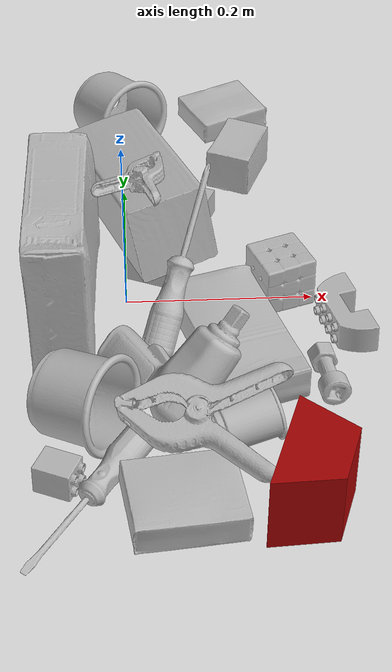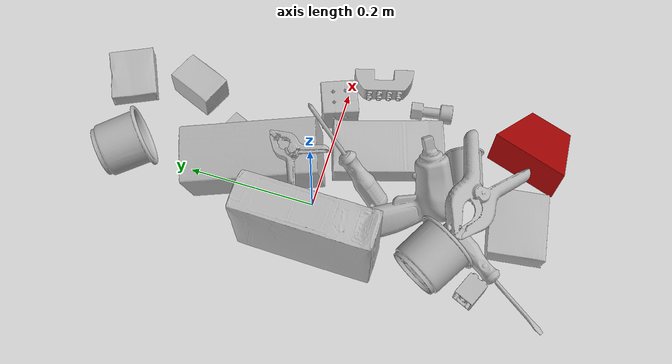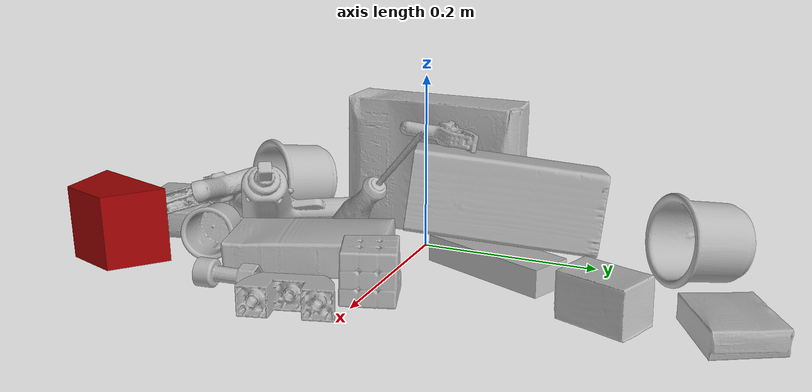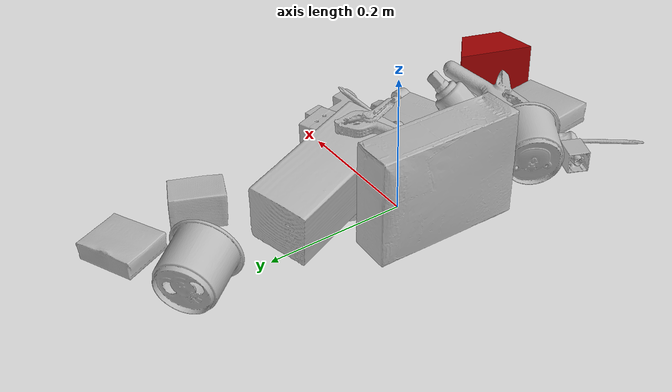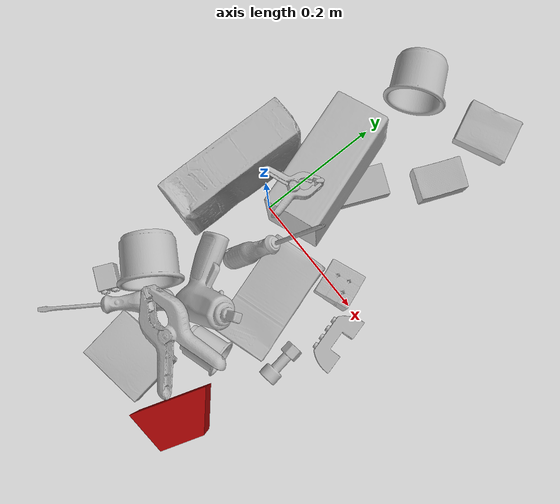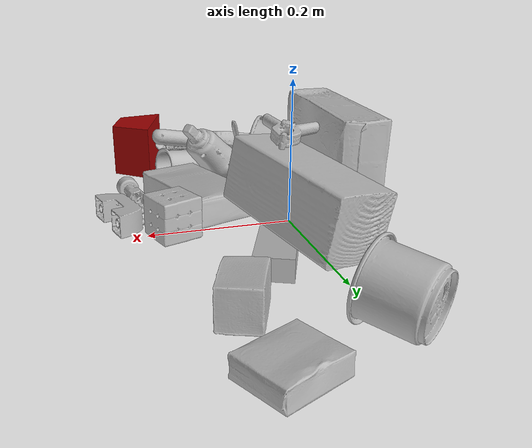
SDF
<sdf version="1.4">
  <world name="default">
    <light name="light1" type="point">
      <pose>0 0 1 0 0 0</pose>
      <diffuse>3 3 3 1</diffuse>
      <specular>3 3 3 1</specular>
    </light>
    <light name="light2" type="point">
      <pose>0 0.5 2 0 0 0</pose>
      <diffuse>1 1 1 1</diffuse>
      <specular>1 1 1 1</specular>
    </light>
    <light name="light3" type="point">
      <pose>0 0.5 2 0 0 0</pose>
      <diffuse>3 3 3 1</diffuse>
      <specular>3 3 3 1</specular>
    </light>
    <scene>
      <ambient>0.7 0.7 0.7</ambient>
    </scene>
    <model name="box21">
      <link name="link_box21">
        <collision name="default">
          <geometry>
            <mesh>
              <uri>model://cracker_box/collision_meshes/collision.obj</uri>
              <scale>1.0 1.0 1.0</scale>
            </mesh>
          </geometry>
          <surface>
            <friction>
              <ode>
                <mu>0.5</mu>
                <mu2>0.5</mu2>
              </ode>
            </friction>
          <contact>
        <ode>
            <max_vel>0</max_vel>
            <min_depth>0.0001</min_depth>
            <kp>1e8</kp>
        </ode>
    </contact></surface>
        </collision>
        <visual name="default">
          <geometry>
            <mesh>
              <uri>model://cracker_box/visual_meshes/visual.dae</uri>
              <scale>1.0 1.0 1.0</scale>
            </mesh>
          </geometry>
        </visual>
        <inertial>
          <mass>3.1344146728515625</mass>
          <pose>0.0009464123286306858 0.00025434247800149024 -0.0017029535956680775 -0.0003162077429326042 -0.011106488668875016 0.0025467950024750923</pose>
          <inertia>
            <ixx>0.0079725515</ixx>
            <iyy>0.01316425</iyy>
            <izz>0.01878659</izz>
            <ixy>0</ixy>
            <ixz>0</ixz>
            <iyz>0</iyz>
          </inertia>
        </inertial>
      </link>
      <pose>-0.06432986259460449 -0.012852434068918228 0.0817578062415123 1.545208140497402 0.009033896535475334 1.563410499556543</pose>
    </model>
    <model name="box22">
      <link name="link_box22">
        <collision name="default">
          <geometry>
            <mesh>
              <uri>model://jenga/collision_meshes/collision.obj</uri>
              <scale>1.0 1.0 1.0</scale>
            </mesh>
          </geometry>
          <surface>
            <friction>
              <ode>
                <mu>0.5</mu>
                <mu2>0.5</mu2>
              </ode>
            </friction>
          <contact>
        <ode>
            <max_vel>0</max_vel>
            <min_depth>0.0001</min_depth>
            <kp>1e8</kp>
        </ode>
    </contact></surface>
        </collision>
        <visual name="default">
          <geometry>
            <mesh>
              <uri>model://jenga/visual_meshes/visual.dae</uri>
              <scale>1.0 1.0 1.0</scale>
            </mesh>
          </geometry>
        </visual>
        <inertial>
          <mass>0.23869852721691132</mass>
          <pose>-2.502855807051674e-07 -0.0001025000965455547 -4.092339804628864e-05 0.0 -7.34215461761844e-07 0.0</pose>
          <inertia>
            <ixx>6.605367e-05</ixx>
            <iyy>0.00044757788</iyy>
            <izz>0.00047782745</izz>
            <ixy>0</ixy>
            <ixz>0</ixz>
            <iyz>0</iyz>
          </inertia>
        </inertial>
      </link>
      <pose>0.05153585597872734 0.10081835091114044 0.014983627945184708 0.0008830638384186344 5.344663272524352e-05 1.1627708389296887</pose>
    </model>
    <model name="box23">
      <link name="link_box23">
        <collision name="default">
          <geometry>
            <mesh>
              <uri>model://rubiks_cube/collision_meshes/collision.obj</uri>
              <scale>1.0 1.0 1.0</scale>
            </mesh>
          </geometry>
          <surface>
            <friction>
              <ode>
                <mu>0.5</mu>
                <mu2>0.5</mu2>
              </ode>
            </friction>
          <contact>
        <ode>
            <max_vel>0</max_vel>
            <min_depth>0.0001</min_depth>
            <kp>1e8</kp>
        </ode>
    </contact></surface>
        </collision>
        <visual name="default">
          <geometry>
            <mesh>
              <uri>model://rubiks_cube/visual_meshes/visual.dae</uri>
              <scale>1.0 1.0 1.0</scale>
            </mesh>
          </geometry>
        </visual>
        <inertial>
          <mass>0.26229962706565857</mass>
          <pose>2.6721041649580002e-05 5.2569666877388954e-05 -7.264316082000732e-06 -0.05467189873579491 -0.09814109048128683 -0.0344550730209751</pose>
          <inertia>
            <ixx>0.00014493814</ixx>
            <iyy>0.00014426222</iyy>
            <izz>0.00014613918</izz>
            <ixy>0</ixy>
            <ixz>0</ixz>
            <iyz>0</iyz>
          </inertia>
        </inertial>
      </link>
      <pose>0.1661963164806366 0.006492733955383301 0.028678975999355316 -2.8720073224593496e-06 -1.2348910744206396e-06 -2.7820376516282437</pose>
    </model>
    <model name="cup1">
      <link name="link_cup1">
        <collision name="default">
          <geometry>
            <mesh>
              <uri>model://j_cups/collision_meshes/collision.obj</uri>
              <scale>1.0 1.0 1.0</scale>
            </mesh>
          </geometry>
          <surface>
            <friction>
              <ode>
                <mu>0.5</mu>
                <mu2>0.5</mu2>
              </ode>
            </friction>
          <contact>
        <ode>
            <max_vel>0</max_vel>
            <min_depth>0.0001</min_depth>
            <kp>1e8</kp>
        </ode>
    </contact></surface>
        </collision>
        <visual name="default">
          <geometry>
            <mesh>
              <uri>model://j_cups/visual_meshes/visual.dae</uri>
              <scale>1.0 1.0 1.0</scale>
            </mesh>
          </geometry>
        </visual>
        <inertial>
          <mass>0.10388943552970886</mass>
          <pose>0.0006164857186377048 0.0005398984649218619 -0.0013479008339345455 0.03030360356214998 0.03758024855654077 0.43868424196936845</pose>
          <inertia>
            <ixx>0.00015254253</ixx>
            <iyy>0.0001541288</iyy>
            <izz>0.00017584988</izz>
            <ixy>0</ixy>
            <ixz>0</ixz>
            <iyz>0</iyz>
          </inertia>
        </inertial>
      </link>
      <pose>-0.044534217566251755 -0.19799554347991943 0.04714987426996231 1.4413221879429918 -0.17620143243121347 1.054224452641211</pose>
    </model>
    <model name="cup2">
      <link name="link_cup2">
        <collision name="default">
          <geometry>
            <mesh>
              <uri>model://i_cups/collision_meshes/collision.obj</uri>
              <scale>1.0 1.0 1.0</scale>
            </mesh>
          </geometry>
          <surface>
            <friction>
              <ode>
                <mu>0.5</mu>
                <mu2>0.5</mu2>
              </ode>
            </friction>
          <contact>
        <ode>
            <max_vel>0</max_vel>
            <min_depth>0.0001</min_depth>
            <kp>1e8</kp>
        </ode>
    </contact></surface>
        </collision>
        <visual name="default">
          <geometry>
            <mesh>
              <uri>model://i_cups/visual_meshes/visual.dae</uri>
              <scale>1.0 1.0 1.0</scale>
            </mesh>
          </geometry>
        </visual>
        <inertial>
          <mass>0.057485051453113556</mass>
          <pose>0.00011239853483857587 0.00016797262651380152 -0.000857901235576719 -0.028982969026390082 -0.03987335468246028 -0.34591562504163004</pose>
          <inertia>
            <ixx>7.958892e-05</ixx>
            <iyy>8.029015e-05</iyy>
            <izz>8.8953486e-05</izz>
            <ixy>0</ixy>
            <ixz>0</ixz>
            <iyz>0</iyz>
          </inertia>
        </inertial>
      </link>
      <pose>-0.006038052495568991 0.3053504228591919 0.04487001895904541 1.4161372288454537 0.5738301340246601 0.5723755918449451</pose>
    </model>
    <model name="box11">
      <link name="link_box11">
        <collision name="default">
          <geometry>
            <mesh>
              <uri>model://wood_block/collision_meshes/collision.obj</uri>
              <scale>1.0 1.0 1.0</scale>
            </mesh>
          </geometry>
          <surface>
            <friction>
              <ode>
                <mu>0.5</mu>
                <mu2>0.5</mu2>
              </ode>
            </friction>
          <contact>
        <ode>
            <max_vel>0</max_vel>
            <min_depth>0.0001</min_depth>
            <kp>1e8</kp>
        </ode>
    </contact></surface>
        </collision>
        <visual name="default">
          <geometry>
            <mesh>
              <uri>model://wood_block/visual_meshes/visual.dae</uri>
              <scale>1.0 1.0 1.0</scale>
            </mesh>
          </geometry>
        </visual>
        <inertial>
          <mass>2.2218124866485596</mass>
          <pose>-5.813315510749817e-06 -0.000570809468626976 0.0002640858292579651 -0.052211005792275555 -0.005192694700552194 -0.006861375481739596</pose>
          <inertia>
            <ixx>0.0029731211</ixx>
            <iyy>0.009392092</iyy>
            <izz>0.009356961</izz>
            <ixy>0</ixy>
            <ixz>0</ixz>
            <iyz>0</iyz>
          </inertia>
        </inertial>
      </link>
      <pose>0.018964797258377075 0.09886941313743591 0.07495682686567307 -0.13852171927347076 0.1286900829158782 1.8981474456048735</pose>
    </model>
    <model name="box12">
      <link name="link_box12">
        <collision name="default">
          <geometry>
            <mesh>
              <uri>model://sugar_box/collision_meshes/collision.obj</uri>
              <scale>1.0 1.0 1.0</scale>
            </mesh>
          </geometry>
          <surface>
            <friction>
              <ode>
                <mu>0.5</mu>
                <mu2>0.5</mu2>
              </ode>
            </friction>
          <contact>
        <ode>
            <max_vel>0</max_vel>
            <min_depth>0.0001</min_depth>
            <kp>1e8</kp>
        </ode>
    </contact></surface>
        </collision>
        <visual name="default">
          <geometry>
            <mesh>
              <uri>model://sugar_box/visual_meshes/visual.dae</uri>
              <scale>1.0 1.0 1.0</scale>
            </mesh>
          </geometry>
        </visual>
        <inertial>
          <mass>1.0162616968154907</mass>
          <pose>0.0010343727190047503 3.849109634757042e-05 -0.00036364805418998003 -0.0004046261550277283 0.0010506634055573133 0.0026153787890220875</pose>
          <inertia>
            <ixx>0.00084674655</ixx>
            <iyy>0.002736858</iyy>
            <izz>0.0032763465</izz>
            <ixy>0</ixy>
            <ixz>0</ixz>
            <iyz>0</iyz>
          </inertia>
        </inertial>
      </link>
      <pose>0.11454591900110245 -0.08915523439645767 0.02236250974237919 3.1412745495637924 -0.025109371871196558 1.8790578254864263</pose>
    </model>
    <model name="box13">
      <link name="link_box13">
        <collision name="default">
          <geometry>
            <mesh>
              <uri>model://pudding_box/collision_meshes/collision.obj</uri>
              <scale>1.0 1.0 1.0</scale>
            </mesh>
          </geometry>
          <surface>
            <friction>
              <ode>
                <mu>0.5</mu>
                <mu2>0.5</mu2>
              </ode>
            </friction>
          <contact>
        <ode>
            <max_vel>0</max_vel>
            <min_depth>0.0001</min_depth>
            <kp>1e8</kp>
        </ode>
    </contact></surface>
        </collision>
        <visual name="default">
          <geometry>
            <mesh>
              <uri>model://pudding_box/visual_meshes/visual.dae</uri>
              <scale>1.0 1.0 1.0</scale>
            </mesh>
          </geometry>
        </visual>
        <inertial>
          <mass>0.24922829866409302</mass>
          <pose>0.0004894822486676276 0.0008067885646596551 -0.0005188828217796981 0.005213100397381839 -0.006603797317439846 0.02007982889363753</pose>
          <inertia>
            <ixx>0.00028173975</ixx>
            <iyy>0.00018955652</iyy>
            <izz>0.0004160624</izz>
            <ixy>0</ixy>
            <ixz>0</ixz>
            <iyz>0</iyz>
          </inertia>
        </inertial>
      </link>
      <pose>0.05090631544589996 -0.311149001121521 0.019725807011127472 0.022347264311089073 -0.011392130067467223 1.7108405588999496</pose>
    </model>
    <model name="box14">
      <link name="link_box14">
        <collision name="default">
          <geometry>
            <mesh>
              <uri>model://gelatin_box/collision_meshes/collision.obj</uri>
              <scale>1.0 1.0 1.0</scale>
            </mesh>
          </geometry>
          <surface>
            <friction>
              <ode>
                <mu>0.5</mu>
                <mu2>0.5</mu2>
              </ode>
            </friction>
          <contact>
        <ode>
            <max_vel>0</max_vel>
            <min_depth>0.0001</min_depth>
            <kp>1e8</kp>
        </ode>
    </contact></surface>
        </collision>
        <visual name="default">
          <geometry>
            <mesh>
              <uri>model://gelatin_box/visual_meshes/visual.dae</uri>
              <scale>1.0 1.0 1.0</scale>
            </mesh>
          </geometry>
        </visual>
        <inertial>
          <mass>0.21856601536273956</mass>
          <pose>0.0004319618456065655 0.00011156871914863586 -0.00036403213744051754 -0.001050372093012012 -0.00475581868936722 0.016440559471878533</pose>
          <inertia>
            <ixx>0.00015428978</ixx>
            <iyy>0.000110208384</iyy>
            <izz>0.00023486343</izz>
            <ixy>0</ixy>
            <ixz>0</ixz>
            <iyz>0</iyz>
          </inertia>
        </inertial>
      </link>
      <pose>0.1241011768579483 0.3462228775024414 0.01516831386834383 0.0055974691038650805 -0.007304604039717003 2.0037450288396075</pose>
    </model>
    <model name="cup15">
      <link name="link_cup15">
        <collision name="default">
          <geometry>
            <mesh>
              <uri>model://b_cups/collision_meshes/collision.obj</uri>
              <scale>1.0 1.0 1.0</scale>
            </mesh>
          </geometry>
          <surface>
            <friction>
              <ode>
                <mu>0.5</mu>
                <mu2>0.5</mu2>
              </ode>
            </friction>
          <contact>
        <ode>
            <max_vel>0</max_vel>
            <min_depth>0.0001</min_depth>
            <kp>1e8</kp>
        </ode>
    </contact></surface>
        </collision>
        <visual name="default">
          <geometry>
            <mesh>
              <uri>model://b_cups/visual_meshes/visual.dae</uri>
              <scale>1.0 1.0 1.0</scale>
            </mesh>
          </geometry>
        </visual>
        <inertial>
          <mass>0.04691024869680405</mass>
          <pose>0.0005182002787478268 0.0018058588029816747 -0.0013381802709773183 0.1135631498080702 0.03872518969029637 -0.3456955043116969</pose>
          <inertia>
            <ixx>3.0706047e-05</ixx>
            <iyy>3.012308e-05</iyy>
            <izz>2.5838557e-05</izz>
            <ixy>0</ixy>
            <ixz>0</ixz>
            <iyz>0</iyz>
          </inertia>
        </inertial>
      </link>
      <pose>0.1129973903298378 -0.2150312066078186 0.027279110625386238 0.5460836310814711 1.4525717740292552 0.8705323583908133</pose>
    </model>
    <model name="toy1">
      <link name="link_toy1">
        <collision name="default">
          <geometry>
            <mesh>
              <uri>model://e_lego_duplo/collision_meshes/collision.obj</uri>
              <scale>1.0 1.0 1.0</scale>
            </mesh>
          </geometry>
          <surface>
            <friction>
              <ode>
                <mu>0.5</mu>
                <mu2>0.5</mu2>
              </ode>
            </friction>
          <contact>
        <ode>
            <max_vel>0</max_vel>
            <min_depth>0.0001</min_depth>
            <kp>1e8</kp>
        </ode>
    </contact></surface>
        </collision>
        <visual name="default">
          <geometry>
            <mesh>
              <uri>model://e_lego_duplo/visual_meshes/visual.dae</uri>
              <scale>1.0 1.0 1.0</scale>
            </mesh>
          </geometry>
        </visual>
        <inertial>
          <mass>0.06732096523046494</mass>
          <pose>0.000325604691170156 0.00023485434940084815 0.001952146296389401 -0.02256754688519212 -6.825533823954374e-05 -0.007625149208872714</pose>
          <inertia>
            <ixx>1.40386455e-05</ixx>
            <iyy>5.761822e-05</iyy>
            <izz>5.6108554e-05</izz>
            <ixy>0</ixy>
            <ixz>0</ixz>
            <iyz>0</iyz>
          </inertia>
        </inertial>
      </link>
      <pose>0.22747066617012024 -0.05087154358625412 0.01651775650680065 -1.5715199923140954 0.005846484742952858 1.8366552695488825</pose>
    </model>
    <model name="toy2">
      <link name="link_toy2">
        <collision name="default">
          <geometry>
            <mesh>
              <uri>model://c_toy_airplane/collision_meshes/collision.obj</uri>
              <scale>1.0 1.0 1.0</scale>
            </mesh>
          </geometry>
          <surface>
            <friction>
              <ode>
                <mu>0.5</mu>
                <mu2>0.5</mu2>
              </ode>
            </friction>
          <contact>
        <ode>
            <max_vel>0</max_vel>
            <min_depth>0.0001</min_depth>
            <kp>1e8</kp>
        </ode>
    </contact></surface>
        </collision>
        <visual name="default">
          <geometry>
            <mesh>
              <uri>model://c_toy_airplane/visual_meshes/visual.dae</uri>
              <scale>1.0 1.0 1.0</scale>
            </mesh>
          </geometry>
        </visual>
        <inertial>
          <mass>0.036399733275175095</mass>
          <pose>-0.00023024277470540255 -4.4302899482318026e-07 -0.0060805329121649265 -0.006192184726307751 -0.016797944030005924 0.7654593329003626</pose>
          <inertia>
            <ixx>1.6714015e-05</ixx>
            <iyy>1.6666843e-05</iyy>
            <izz>3.9241195e-06</izz>
            <ixy>0</ixy>
            <ixz>0</ixz>
            <iyz>0</iyz>
          </inertia>
        </inertial>
      </link>
      <pose>0.20346622169017792 -0.13786835968494415 0.015085726045072079 -1.5985479443693864 -0.5751522054073233 0.15542938396067688</pose>
    </model>
    <model name="toy3">
      <link name="link_toy3">
        <collision name="default">
          <geometry>
            <mesh>
              <uri>model://foam_brick/collision_meshes/collision.obj</uri>
              <scale>1.0 1.0 1.0</scale>
            </mesh>
          </geometry>
          <surface>
            <friction>
              <ode>
                <mu>0.5</mu>
                <mu2>0.5</mu2>
              </ode>
            </friction>
          <contact>
        <ode>
            <max_vel>0</max_vel>
            <min_depth>0.0001</min_depth>
            <kp>1e8</kp>
        </ode>
    </contact></surface>
        </collision>
        <visual name="default">
          <geometry>
            <mesh>
              <uri>model://foam_brick/visual_meshes/visual.dae</uri>
              <scale>1.0 1.0 1.0</scale>
            </mesh>
          </geometry>
        </visual>
        <inertial>
          <mass>0.28719362616539</mass>
          <pose>-0.0002522472059354186 0.00034584346576593816 -0.0002532101352699101 -0.2940183114741006 0.017274439707053432 -0.0007449906726392561</pose>
          <inertia>
            <ixx>0.00012545152</ixx>
            <iyy>0.00020028985</iyy>
            <izz>0.00020283528</izz>
            <ixy>0</ixy>
            <ixz>0</ixz>
            <iyz>0</iyz>
          </inertia>
        </inertial>
      </link>
      <pose>0.13541752099990845 0.23233744502067566 0.02549683302640915 3.1325083878513733 0.0066072571189079625 -1.966850554831168</pose>
    </model>
    <model name="toy4">
      <link name="link_toy4">
        <collision name="default">
          <geometry>
            <mesh>
              <uri>model://prism/collision_meshes/collision.obj</uri>
              <scale>1.0 1.0 1.0</scale>
            </mesh>
          </geometry>
          <surface>
            <friction>
              <ode>
                <mu>0.5</mu>
                <mu2>0.5</mu2>
              </ode>
            </friction>
          <contact>
        <ode>
            <max_vel>0</max_vel>
            <min_depth>0.0001</min_depth>
            <kp>1e8</kp>
        </ode>
    </contact></surface>
        </collision>
        <visual name="default">
          <geometry>
            <mesh>
              <uri>model://prism/visual_meshes/visual.dae</uri>
              <scale>1.0 1.0 1.0</scale>
            </mesh>
          </geometry>
        </visual>
        <inertial>
          <mass>0.7170383930206299</mass>
          <pose>-9.85359656624496e-05 -4.96157269935793e-07 -0.0033869098406285048 0.0 0.006559181231804993 0.0</pose>
          <inertia>
            <ixx>0.0006471183</ixx>
            <iyy>0.0007820508</iyy>
            <izz>0.0009579188</izz>
            <ixy>0</ixy>
            <ixz>0</ixz>
            <iyz>0</iyz>
          </inertia>
        </inertial>
      </link>
      <pose>0.17261642217636108 -0.30894240736961365 0.04158848151564598 1.5836393539803608 1.3878617442515703e-06 1.2514859676000896</pose>
    </model>
    <model name="toy5">
      <link name="link_toy5">
        <collision name="default">
          <geometry>
            <mesh>
              <uri>model://b_toy_airplane/collision_meshes/collision.obj</uri>
              <scale>1.0 1.0 1.0</scale>
            </mesh>
          </geometry>
          <surface>
            <friction>
              <ode>
                <mu>0.5</mu>
                <mu2>0.5</mu2>
              </ode>
            </friction>
          <contact>
        <ode>
            <max_vel>0</max_vel>
            <min_depth>0.0001</min_depth>
            <kp>1e8</kp>
        </ode>
    </contact></surface>
        </collision>
        <visual name="default">
          <geometry>
            <mesh>
              <uri>model://b_toy_airplane/visual_meshes/visual.dae</uri>
              <scale>1.0 1.0 1.0</scale>
            </mesh>
          </geometry>
        </visual>
        <inertial>
          <mass>0.399619996547699</mass>
          <pose>0.005081363022327423 0.004015584941953421 0.009543066844344139 -0.04001809649421662 -0.04022184162979335 -0.5601502893443677</pose>
          <inertia>
            <ixx>0.0007419019</ixx>
            <iyy>0.00029654545</iyy>
            <izz>0.0009229998</izz>
            <ixy>0</ixy>
            <ixz>0</ixz>
            <iyz>0</iyz>
          </inertia>
        </inertial>
      </link>
      <pose>0.036637742072343826 -0.1628085970878601 0.04561423137784004 -3.1352145185278 -0.8042662072273453 0.5961749006115623</pose>
    </model>
    <model name="toy6">
      <link name="link_toy6">
        <collision name="default">
          <geometry>
            <mesh>
              <uri>model://f_lego_duplo/collision_meshes/collision.obj</uri>
              <scale>1.0 1.0 1.0</scale>
            </mesh>
          </geometry>
          <surface>
            <friction>
              <ode>
                <mu>0.5</mu>
                <mu2>0.5</mu2>
              </ode>
            </friction>
          <contact>
        <ode>
            <max_vel>0</max_vel>
            <min_depth>0.0001</min_depth>
            <kp>1e8</kp>
        </ode>
    </contact></surface>
        </collision>
        <visual name="default">
          <geometry>
            <mesh>
              <uri>model://f_lego_duplo/visual_meshes/visual.dae</uri>
              <scale>1.0 1.0 1.0</scale>
            </mesh>
          </geometry>
        </visual>
        <inertial>
          <mass>0.05315950885415077</mass>
          <pose>2.3694145056651905e-05 0.0001339314185315743 0.0018837872194126248 0.029838727868319145 -0.014424898970195728 -0.6756716124708322</pose>
          <inertia>
            <ixx>1.1232896e-05</ixx>
            <iyy>1.1332969e-05</iyy>
            <izz>9.750634e-06</izz>
            <ixy>0</ixy>
            <ixz>0</ixz>
            <iyz>0</iyz>
          </inertia>
        </inertial>
      </link>
      <pose>-0.06634583324193954 -0.26852625608444214 0.01620721071958542 1.578980823858879 0.00016238687235574202 1.1571662799668425</pose>
    </model>
    <model name="hardware1">
      <link name="link_hardware1">
        <collision name="default">
          <geometry>
            <mesh>
              <uri>model://flat_screwdriver/collision_meshes/collision.obj</uri>
              <scale>1.0 1.0 1.0</scale>
            </mesh>
          </geometry>
          <surface>
            <friction>
              <ode>
                <mu>0.5</mu>
                <mu2>0.5</mu2>
              </ode>
            </friction>
          <contact>
        <ode>
            <max_vel>0</max_vel>
            <min_depth>0.0001</min_depth>
            <kp>1e8</kp>
        </ode>
    </contact></surface>
        </collision>
        <visual name="default">
          <geometry>
            <mesh>
              <uri>model://flat_screwdriver/visual_meshes/visual.dae</uri>
              <scale>1.0 1.0 1.0</scale>
            </mesh>
          </geometry>
        </visual>
        <inertial>
          <mass>0.12191366404294968</mass>
          <pose>-0.0489187091588974 -0.0006576801533810794 -0.0006140916957519948 -0.5614853566550635 -0.0032337267722331534 0.006982277608032515</pose>
          <inertia>
            <ixx>1.4404012e-05</ixx>
            <iyy>0.00018286215</iyy>
            <izz>0.00018277747</izz>
            <ixy>0</ixy>
            <ixz>0</ixz>
            <iyz>0</iyz>
          </inertia>
        </inertial>
      </link>
      <pose>-0.03564305230975151 -0.29361069202423096 0.015286293812096119 -0.17961492629152737 0.045155880947435306 -2.173784230844468</pose>
    </model>
    <model name="hardware2">
      <link name="link_hardware2">
        <collision name="default">
          <geometry>
            <mesh>
              <uri>model://medium_clamp/collision_meshes/collision.obj</uri>
              <scale>1.0 1.0 1.0</scale>
            </mesh>
          </geometry>
          <surface>
            <friction>
              <ode>
                <mu>0.5</mu>
                <mu2>0.5</mu2>
              </ode>
            </friction>
          <contact>
        <ode>
            <max_vel>0</max_vel>
            <min_depth>0.0001</min_depth>
            <kp>1e8</kp>
        </ode>
    </contact></surface>
        </collision>
        <visual name="default">
          <geometry>
            <mesh>
              <uri>model://medium_clamp/visual_meshes/visual.dae</uri>
              <scale>1.0 1.0 1.0</scale>
            </mesh>
          </geometry>
        </visual>
        <inertial>
          <mass>0.018204163759946823</mass>
          <pose>0.005390994716435671 0.00039532413939014077 -0.0001222158025484532 -0.0012269240735234023 0.0025845026557488396 0.03820772126630794</pose>
          <inertia>
            <ixx>4.959469e-06</ixx>
            <iyy>7.217431e-06</iyy>
            <izz>1.1117007e-05</izz>
            <ixy>0</ixy>
            <ixz>0</ixz>
            <iyz>0</iyz>
          </inertia>
        </inertial>
      </link>
      <pose>0.018544010818004608 0.03181244432926178 0.1398754119873047 -0.12708987853083636 0.06936108428349506 1.088118508116063</pose>
    </model>
    <model name="hardware3">
      <link name="link_hardware3">
        <collision name="default">
          <geometry>
            <mesh>
              <uri>model://large_clamp/collision_meshes/collision.obj</uri>
              <scale>1.0 1.0 1.0</scale>
            </mesh>
          </geometry>
          <surface>
            <friction>
              <ode>
                <mu>0.5</mu>
                <mu2>0.5</mu2>
              </ode>
            </friction>
          <contact>
        <ode>
            <max_vel>0</max_vel>
            <min_depth>0.0001</min_depth>
            <kp>1e8</kp>
        </ode>
    </contact></surface>
        </collision>
        <visual name="default">
          <geometry>
            <mesh>
              <uri>model://large_clamp/visual_meshes/visual.dae</uri>
              <scale>1.0 1.0 1.0</scale>
            </mesh>
          </geometry>
        </visual>
        <inertial>
          <mass>0.18972517549991608</mass>
          <pose>0.006369356997311115 0.0003585676895454526 -0.00018398048996459693 -0.002133071569430183 0.00967158655684735 0.02663316926682878</pose>
          <inertia>
            <ixx>0.0001673895</ixx>
            <iyy>0.00031788155</iyy>
            <izz>0.00045985627</izz>
            <ixy>0</ixy>
            <ixz>0</ixz>
            <iyz>0</iyz>
          </inertia>
        </inertial>
      </link>
      <pose>0.06828684359788895 -0.23974710702896118 0.05984224006533623 2.7667842405063032 0.04217293036025139 2.9512161139144206</pose>
    </model>
    <model name="hardware4">
      <link name="link_hardware4">
        <collision name="default">
          <geometry>
            <mesh>
              <uri>model://phillips_screwdriver/collision_meshes/collision.obj</uri>
              <scale>1.0 1.0 1.0</scale>
            </mesh>
          </geometry>
          <surface>
            <friction>
              <ode>
                <mu>0.5</mu>
                <mu2>0.5</mu2>
              </ode>
            </friction>
          <contact>
        <ode>
            <max_vel>0</max_vel>
            <min_depth>0.0001</min_depth>
            <kp>1e8</kp>
        </ode>
    </contact></surface>
        </collision>
        <visual name="default">
          <geometry>
            <mesh>
              <uri>model://phillips_screwdriver/visual_meshes/visual.dae</uri>
              <scale>1.0 1.0 1.0</scale>
            </mesh>
          </geometry>
        </visual>
        <inertial>
          <mass>0.10424148291349411</mass>
          <pose>-0.047771818935871124 0.0010362300090491772 -0.000455554953077808 -0.15717568897110376 0.005850990280187748 -0.0021567475529960492</pose>
          <inertia>
            <ixx>1.2247306e-05</ixx>
            <iyy>0.00015355984</iyy>
            <izz>0.00015369034</izz>
            <ixy>0</ixy>
            <ixz>0</ixz>
            <iyz>0</iyz>
          </inertia>
        </inertial>
      </link>
      <pose>0.05630630627274513 -0.03822271153330803 0.07935839146375656 -2.665013077530659 -0.7817326070879832 1.1291734044715682</pose>
    </model>
  <physics type="ode">
      <max_contacts>50</max_contacts>
      <ode>
        <solver>
          <type>quick</type>
          <iters>75</iters>
        </solver>
        <constraints>
          <contact_max_correcting_vel>0</contact_max_correcting_vel>
          <contact_surface_layer>0</contact_surface_layer>
        </constraints>
      </ode>
    </physics></world>
</sdf>
